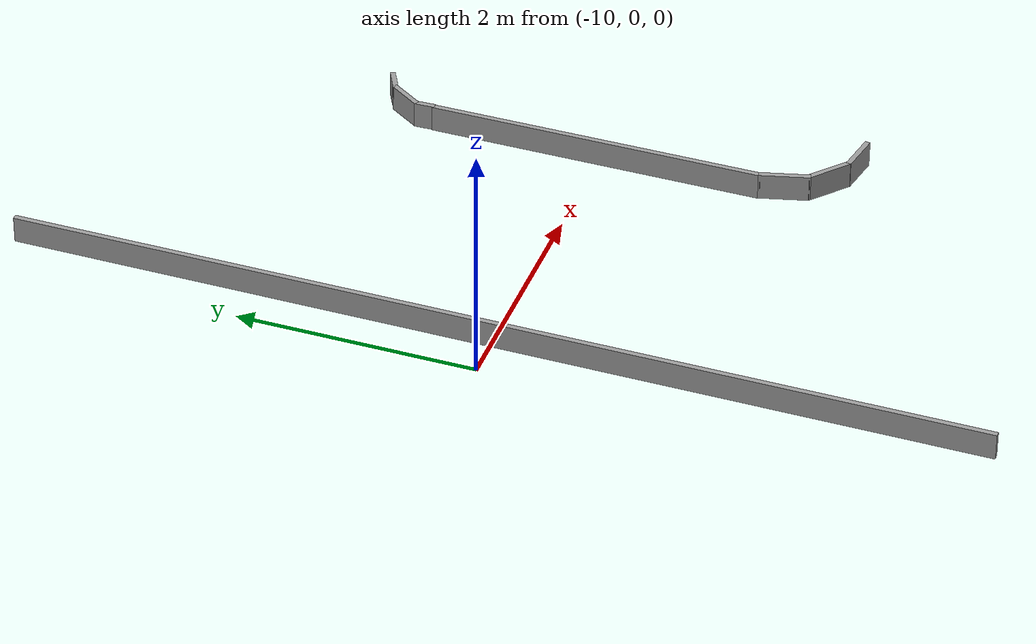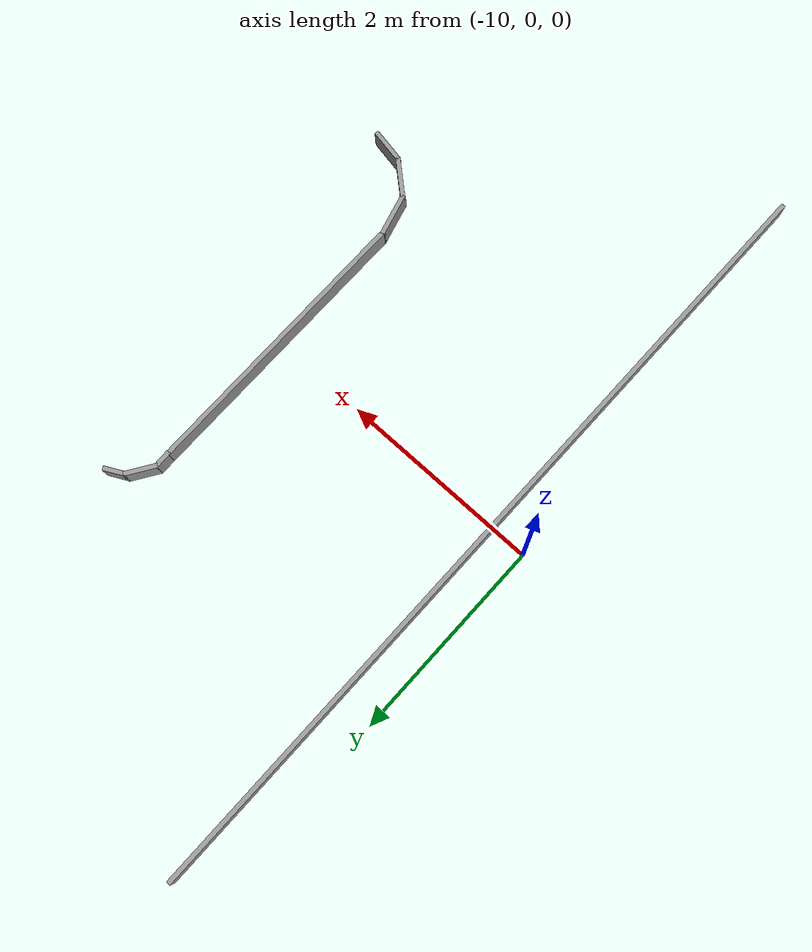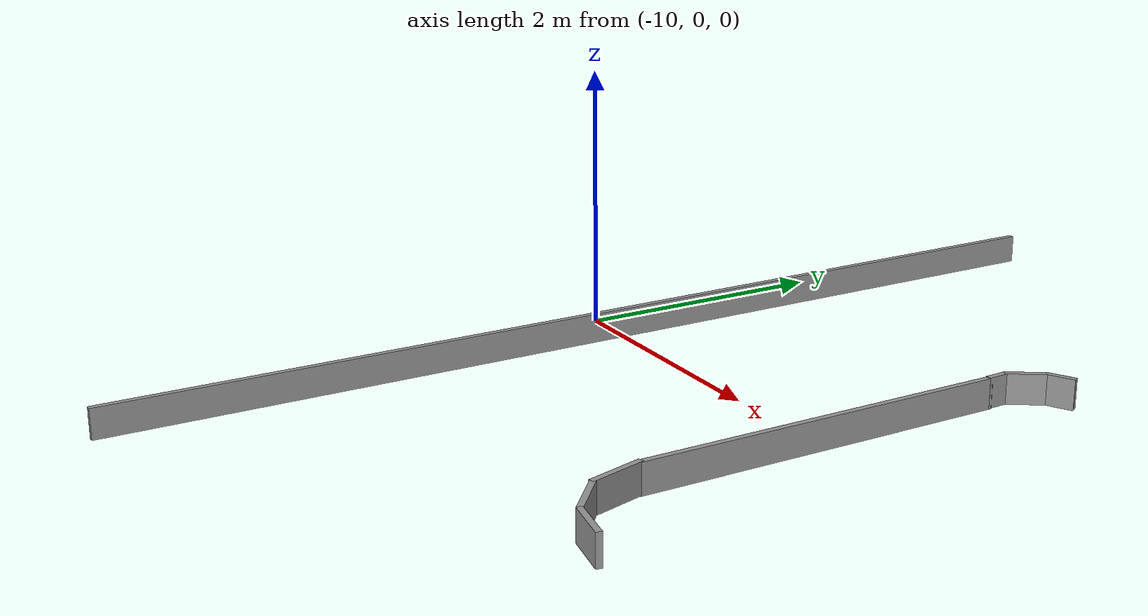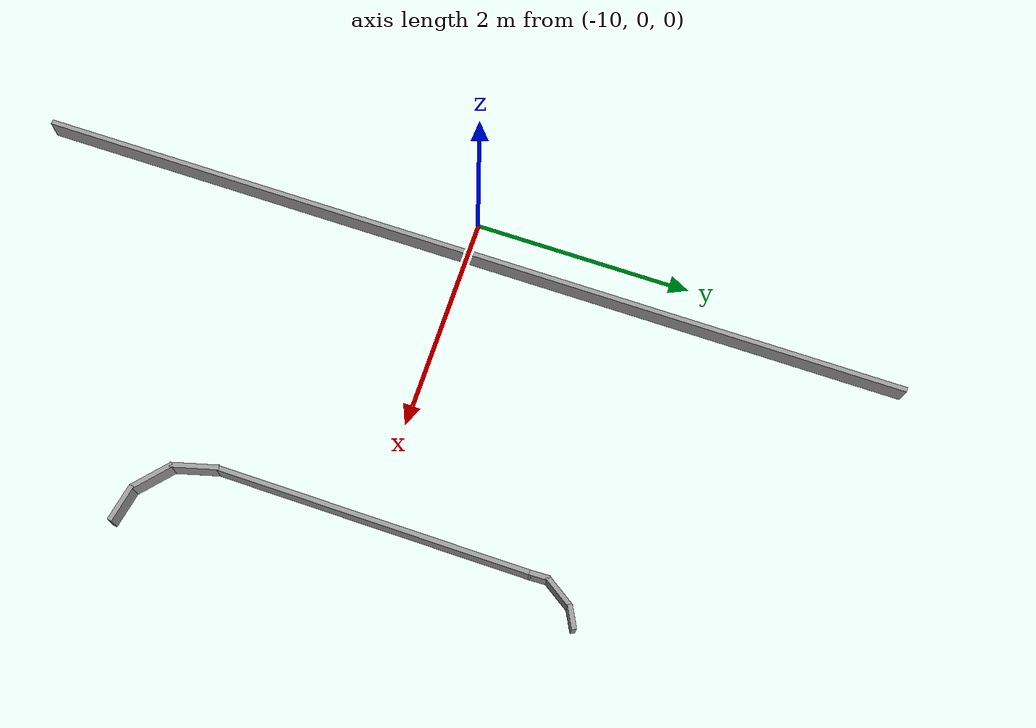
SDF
<sdf version="1.5">
 <world name="default">
  <model name="grey_wall_5">
   <link name="link">
    <pose>-0.467859 -0.097477 1.4 0 -0 0.009516</pose>
    <inertial>
     <inertia><ixx>nan</ixx><ixy>0</ixy><ixz>0</ixz><iyy>nan</iyy><iyz>0</iyz><izz>nan</izz></inertia>
     <mass>0</mass>
    </inertial>
    <visual name="visual">
     <cast_shadows>0</cast_shadows>
     <geometry><box><size>8.07319 0.043266 0.226147</size></box></geometry>
     <material>
      <script>
       <uri>model://grey_wall/materials/scripts</uri>
       <uri>model://grey_wall/materials/textures</uri>
       <name>vrc/grey_wall</name>
      </script>
      <ambient>1 1 1 1</ambient>
      <diffuse>1 1 1 1</diffuse>
      <specular>0 0 0 1</specular>
      <emissive>0 0 0 1</emissive>
     </material>
    </visual>
    <collision name="collision">
     <geometry><box><size>8.07319 0.043266 0.226147</size></box></geometry>
     <surface>
      <friction>
       <ode><mu>1</mu><mu2>1</mu2><fdir1>0 0 0</fdir1><slip1>0</slip1><slip2>0</slip2></ode>
       <torsional>
        <coefficient>1</coefficient>
        <patch_radius>0</patch_radius>
        <surface_radius>0</surface_radius>
        <use_patch_radius>1</use_patch_radius>
        <ode><slip>0</slip></ode>
       </torsional>
      </friction>
      <bounce><restitution_coefficient>0</restitution_coefficient><threshold>1e+06</threshold></bounce>
      <contact>
       <collide_without_contact>0</collide_without_contact>
       <collide_without_contact_bitmask>1</collide_without_contact_bitmask>
       <collide_bitmask>1</collide_bitmask>
       <ode>
        <soft_cfm>0</soft_cfm>
        <soft_erp>0.2</soft_erp>
        <kp>1e+13</kp>
        <kd>1</kd>
        <max_vel>0.01</max_vel>
        <min_depth>0</min_depth>
       </ode>
       <bullet>
        <split_impulse>1</split_impulse>
        <split_impulse_penetration_threshold>-0.01</split_impulse_penetration_threshold>
        <soft_cfm>0</soft_cfm>
        <soft_erp>0.2</soft_erp>
        <kp>1e+13</kp>
        <kd>1</kd>
       </bullet>
      </contact>
     </surface>
    </collision>
   </link>
   <static>1</static>
   <pose>-9.73387 0.474906 -1.30963 0 -0 1.55954</pose>
  </model>
  <model name="grey_wall_41">
   <link name="link">
    <pose>0.112404 0.030945 1.4 0 -0 0.009516</pose>
    <inertial>
     <inertia><ixx>nan</ixx><ixy>0</ixy><ixz>0</ixz><iyy>nan</iyy><iyz>0</iyz><izz>nan</izz></inertia>
     <mass>0</mass>
    </inertial>
    <visual name="visual">
     <cast_shadows>0</cast_shadows>
     <geometry><box><size>2.82247 0.043266 0.226147</size></box></geometry>
     <material>
      <script>
       <uri>model://grey_wall/materials/scripts</uri>
       <uri>model://grey_wall/materials/textures</uri>
       <name>vrc/grey_wall</name>
      </script>
      <ambient>1 1 1 1</ambient>
      <diffuse>1 1 1 1</diffuse>
      <specular>0 0 0 1</specular>
      <emissive>0 0 0 1</emissive>
     </material>
    </visual>
    <collision name="collision">
     <geometry><box><size>2.82247 0.043266 0.226147</size></box></geometry>
     <surface>
      <friction>
       <ode><mu>1</mu><mu2>1</mu2><fdir1>0 0 0</fdir1><slip1>0</slip1><slip2>0</slip2></ode>
       <torsional>
        <coefficient>1</coefficient>
        <patch_radius>0</patch_radius>
        <surface_radius>0</surface_radius>
        <use_patch_radius>1</use_patch_radius>
        <ode><slip>0</slip></ode>
       </torsional>
      </friction>
      <bounce><restitution_coefficient>0</restitution_coefficient><threshold>1e+06</threshold></bounce>
      <contact>
       <collide_without_contact>0</collide_without_contact>
       <collide_without_contact_bitmask>1</collide_without_contact_bitmask>
       <collide_bitmask>1</collide_bitmask>
       <ode>
        <soft_cfm>0</soft_cfm>
        <soft_erp>0.2</soft_erp>
        <kp>1e+13</kp>
        <kd>1</kd>
        <max_vel>0.01</max_vel>
        <min_depth>0</min_depth>
       </ode>
       <bullet>
        <split_impulse>1</split_impulse>
        <split_impulse_penetration_threshold>-0.01</split_impulse_penetration_threshold>
        <soft_cfm>0</soft_cfm>
        <soft_erp>0.2</soft_erp>
        <kp>1e+13</kp>
        <kd>1</kd>
       </bullet>
      </contact>
     </surface>
    </collision>
   </link>
   <static>1</static>
   <pose>-7.0448 -0.073707 -1.30963 0 -0 1.55954</pose>
  </model>
  <model name="grey_wall_42">
   <link name="link">
    <pose>-0.33267 0.448285 1.4 0 0 -1.30708</pose>
    <inertial>
     <inertia><ixx>nan</ixx><ixy>0</ixy><ixz>0</ixz><iyy>nan</iyy><iyz>0</iyz><izz>nan</izz></inertia>
     <mass>0</mass>
    </inertial>
    <visual name="visual">
     <cast_shadows>0</cast_shadows>
     <geometry><box><size>0.42483 0.043266 0.226147</size></box></geometry>
     <material>
      <script>
       <uri>model://grey_wall/materials/scripts</uri>
       <uri>model://grey_wall/materials/textures</uri>
       <name>vrc/grey_wall</name>
      </script>
      <ambient>1 1 1 1</ambient>
      <diffuse>1 1 1 1</diffuse>
      <specular>0 0 0 1</specular>
      <emissive>0 0 0 1</emissive>
     </material>
    </visual>
    <collision name="collision">
     <geometry><box><size>0.42483 0.043266 0.226147</size></box></geometry>
     <surface>
      <friction>
       <ode><mu>1</mu><mu2>1</mu2><fdir1>0 0 0</fdir1><slip1>0</slip1><slip2>0</slip2></ode>
       <torsional>
        <coefficient>1</coefficient>
        <patch_radius>0</patch_radius>
        <surface_radius>0</surface_radius>
        <use_patch_radius>1</use_patch_radius>
        <ode><slip>0</slip></ode>
       </torsional>
      </friction>
      <bounce><restitution_coefficient>0</restitution_coefficient><threshold>1e+06</threshold></bounce>
      <contact>
       <collide_without_contact>0</collide_without_contact>
       <collide_without_contact_bitmask>1</collide_without_contact_bitmask>
       <collide_bitmask>1</collide_bitmask>
       <ode>
        <soft_cfm>0</soft_cfm>
        <soft_erp>0.2</soft_erp>
        <kp>1e+13</kp>
        <kd>1</kd>
        <max_vel>0.01</max_vel>
        <min_depth>0</min_depth>
       </ode>
       <bullet>
        <split_impulse>1</split_impulse>
        <split_impulse_penetration_threshold>-0.01</split_impulse_penetration_threshold>
        <soft_cfm>0</soft_cfm>
        <soft_erp>0.2</soft_erp>
        <kp>1e+13</kp>
        <kd>1</kd>
       </bullet>
      </contact>
     </surface>
    </collision>
   </link>
   <static>1</static>
   <pose>-6.69311 -2.00488 -1.30539 0 -0 0</pose>
  </model>
  <model name="grey_wall_43">
   <link name="link">
    <pose>0.087469 0.011541 1.4 0 0 -0.183893</pose>
    <inertial>
     <inertia><ixx>nan</ixx><ixy>0</ixy><ixz>0</ixz><iyy>nan</iyy><iyz>0</iyz><izz>nan</izz></inertia>
     <mass>0</mass>
    </inertial>
    <visual name="visual">
     <cast_shadows>0</cast_shadows>
     <geometry><box><size>0.343648 0.043266 0.226147</size></box></geometry>
     <material>
      <script>
       <uri>model://grey_wall/materials/scripts</uri>
       <uri>model://grey_wall/materials/textures</uri>
       <name>vrc/grey_wall</name>
      </script>
      <ambient>1 1 1 1</ambient>
      <diffuse>1 1 1 1</diffuse>
      <specular>0 0 0 1</specular>
      <emissive>0 0 0 1</emissive>
     </material>
    </visual>
    <collision name="collision">
     <geometry><box><size>0.343648 0.043266 0.226147</size></box></geometry>
     <surface>
      <friction>
       <ode><mu>1</mu><mu2>1</mu2><fdir1>0 0 0</fdir1><slip1>0</slip1><slip2>0</slip2></ode>
       <torsional>
        <coefficient>1</coefficient>
        <patch_radius>0</patch_radius>
        <surface_radius>0</surface_radius>
        <use_patch_radius>1</use_patch_radius>
        <ode><slip>0</slip></ode>
       </torsional>
      </friction>
      <bounce><restitution_coefficient>0</restitution_coefficient><threshold>1e+06</threshold></bounce>
      <contact>
       <collide_without_contact>0</collide_without_contact>
       <collide_without_contact_bitmask>1</collide_without_contact_bitmask>
       <collide_bitmask>1</collide_bitmask>
       <ode>
        <soft_cfm>0</soft_cfm>
        <soft_erp>0.2</soft_erp>
        <kp>1e+13</kp>
        <kd>1</kd>
        <max_vel>0.01</max_vel>
        <min_depth>0</min_depth>
       </ode>
       <bullet>
        <split_impulse>1</split_impulse>
        <split_impulse_penetration_threshold>-0.01</split_impulse_penetration_threshold>
        <soft_cfm>0</soft_cfm>
        <soft_erp>0.2</soft_erp>
        <kp>1e+13</kp>
        <kd>1</kd>
       </bullet>
      </contact>
     </surface>
    </collision>
   </link>
   <static>1</static>
   <pose>-6.61627 -2.03791 -1.30539 0 -0 0</pose>
  </model>
  <model name="grey_wall_45">
   <link name="link">
    <pose>0.099543 0.095747 1.4 0 0 -0.716202</pose>
    <inertial>
     <inertia><ixx>nan</ixx><ixy>0</ixy><ixz>0</ixz><iyy>nan</iyy><iyz>0</iyz><izz>nan</izz></inertia>
     <mass>0</mass>
    </inertial>
    <visual name="visual">
     <cast_shadows>0</cast_shadows>
     <geometry><box><size>0.396293 0.043266 0.226147</size></box></geometry>
     <material>
      <script>
       <uri>model://grey_wall/materials/scripts</uri>
       <uri>model://grey_wall/materials/textures</uri>
       <name>vrc/grey_wall</name>
      </script>
      <ambient>1 1 1 1</ambient>
      <diffuse>1 1 1 1</diffuse>
      <specular>0 0 0 1</specular>
      <emissive>0 0 0 1</emissive>
     </material>
    </visual>
    <collision name="collision">
     <geometry><box><size>0.396293 0.043266 0.226147</size></box></geometry>
     <surface>
      <friction>
       <ode><mu>1</mu><mu2>1</mu2><fdir1>0 0 0</fdir1><slip1>0</slip1><slip2>0</slip2></ode>
       <torsional>
        <coefficient>1</coefficient>
        <patch_radius>0</patch_radius>
        <surface_radius>0</surface_radius>
        <use_patch_radius>1</use_patch_radius>
        <ode><slip>0</slip></ode>
       </torsional>
      </friction>
      <bounce><restitution_coefficient>0</restitution_coefficient><threshold>1e+06</threshold></bounce>
      <contact>
       <collide_without_contact>0</collide_without_contact>
       <collide_without_contact_bitmask>1</collide_without_contact_bitmask>
       <collide_bitmask>1</collide_bitmask>
       <ode>
        <soft_cfm>0</soft_cfm>
        <soft_erp>0.2</soft_erp>
        <kp>1e+13</kp>
        <kd>1</kd>
        <max_vel>0.01</max_vel>
        <min_depth>0</min_depth>
       </ode>
       <bullet>
        <split_impulse>1</split_impulse>
        <split_impulse_penetration_threshold>-0.01</split_impulse_penetration_threshold>
        <soft_cfm>0</soft_cfm>
        <soft_erp>0.2</soft_erp>
        <kp>1e+13</kp>
        <kd>1</kd>
       </bullet>
      </contact>
     </surface>
    </collision>
   </link>
   <static>1</static>
   <pose>-6.93206 -1.9655 -1.30539 0 -0 0</pose>
  </model>
  <model name="grey_wall_46">
   <link name="link">
    <pose>-0.251242 0.347316 1.4 0 0 -2.15621</pose>
    <inertial>
     <inertia><ixx>nan</ixx><ixy>0</ixy><ixz>0</ixz><iyy>nan</iyy><iyz>0</iyz><izz>nan</izz></inertia>
     <mass>0</mass>
    </inertial>
    <visual name="visual">
     <cast_shadows>0</cast_shadows>
     <geometry><box><size>0.310921 0.043266 0.226147</size></box></geometry>
     <material>
      <script>
       <uri>model://grey_wall/materials/scripts</uri>
       <uri>model://grey_wall/materials/textures</uri>
       <name>vrc/grey_wall</name>
      </script>
      <ambient>1 1 1 1</ambient>
      <diffuse>1 1 1 1</diffuse>
      <specular>0 0 0 1</specular>
      <emissive>0 0 0 1</emissive>
     </material>
    </visual>
    <collision name="collision">
     <geometry><box><size>0.310921 0.043266 0.226147</size></box></geometry>
     <surface>
      <friction>
       <ode><mu>1</mu><mu2>1</mu2><fdir1>0 0 0</fdir1><slip1>0</slip1><slip2>0</slip2></ode>
       <torsional>
        <coefficient>1</coefficient>
        <patch_radius>0</patch_radius>
        <surface_radius>0</surface_radius>
        <use_patch_radius>1</use_patch_radius>
        <ode><slip>0</slip></ode>
       </torsional>
      </friction>
      <bounce><restitution_coefficient>0</restitution_coefficient><threshold>1e+06</threshold></bounce>
      <contact>
       <collide_without_contact>0</collide_without_contact>
       <collide_without_contact_bitmask>1</collide_without_contact_bitmask>
       <collide_bitmask>1</collide_bitmask>
       <ode>
        <soft_cfm>0</soft_cfm>
        <soft_erp>0.2</soft_erp>
        <kp>1e+13</kp>
        <kd>1</kd>
        <max_vel>0.01</max_vel>
        <min_depth>0</min_depth>
       </ode>
       <bullet>
        <split_impulse>1</split_impulse>
        <split_impulse_penetration_threshold>-0.01</split_impulse_penetration_threshold>
        <soft_cfm>0</soft_cfm>
        <soft_erp>0.2</soft_erp>
        <kp>1e+13</kp>
        <kd>1</kd>
       </bullet>
      </contact>
     </surface>
    </collision>
   </link>
   <static>1</static>
   <pose>-6.74421 1.36457 -1.30539 0 -0 0</pose>
  </model>
  <model name="grey_wall_47">
   <link name="link">
    <pose>-0.296006 0.364249 1.4 0 0 -2.66206</pose>
    <inertial>
     <inertia><ixx>nan</ixx><ixy>0</ixy><ixz>0</ixz><iyy>nan</iyy><iyz>0</iyz><izz>nan</izz></inertia>
     <mass>0</mass>
    </inertial>
    <visual name="visual">
     <cast_shadows>0</cast_shadows>
     <geometry><box><size>0.210264 0.043266 0.226147</size></box></geometry>
     <material>
      <script>
       <uri>model://grey_wall/materials/scripts</uri>
       <uri>model://grey_wall/materials/textures</uri>
       <name>vrc/grey_wall</name>
      </script>
      <ambient>1 1 1 1</ambient>
      <diffuse>1 1 1 1</diffuse>
      <specular>0 0 0 1</specular>
      <emissive>0 0 0 1</emissive>
     </material>
    </visual>
    <collision name="collision">
     <geometry><box><size>0.210264 0.043266 0.226147</size></box></geometry>
     <surface>
      <friction>
       <ode><mu>1</mu><mu2>1</mu2><fdir1>0 0 0</fdir1><slip1>0</slip1><slip2>0</slip2></ode>
       <torsional>
        <coefficient>1</coefficient>
        <patch_radius>0</patch_radius>
        <surface_radius>0</surface_radius>
        <use_patch_radius>1</use_patch_radius>
        <ode><slip>0</slip></ode>
       </torsional>
      </friction>
      <bounce><restitution_coefficient>0</restitution_coefficient><threshold>1e+06</threshold></bounce>
      <contact>
       <collide_without_contact>0</collide_without_contact>
       <collide_without_contact_bitmask>1</collide_without_contact_bitmask>
       <collide_bitmask>1</collide_bitmask>
       <ode>
        <soft_cfm>0</soft_cfm>
        <soft_erp>0.2</soft_erp>
        <kp>1e+13</kp>
        <kd>1</kd>
        <max_vel>0.01</max_vel>
        <min_depth>0</min_depth>
       </ode>
       <bullet>
        <split_impulse>1</split_impulse>
        <split_impulse_penetration_threshold>-0.01</split_impulse_penetration_threshold>
        <soft_cfm>0</soft_cfm>
        <soft_erp>0.2</soft_erp>
        <kp>1e+13</kp>
        <kd>1</kd>
       </bullet>
      </contact>
     </surface>
    </collision>
   </link>
   <static>1</static>
   <pose>-6.53614 1.50936 -1.30539 0 -0 0</pose>
  </model>
  <model name="grey_wall_48">
   <link name="link">
    <pose>-0.248454 0.370241 1.4 0 0 -1.53931</pose>
    <inertial>
     <inertia><ixx>nan</ixx><ixy>0</ixy><ixz>0</ixz><iyy>nan</iyy><iyz>0</iyz><izz>nan</izz></inertia>
     <mass>0</mass>
    </inertial>
    <visual name="visual">
     <cast_shadows>0</cast_shadows>
     <geometry><box><size>0.173256 0.043266 0.226147</size></box></geometry>
     <material>
      <script>
       <uri>model://grey_wall/materials/scripts</uri>
       <uri>model://grey_wall/materials/textures</uri>
       <name>vrc/grey_wall</name>
      </script>
      <ambient>1 1 1 1</ambient>
      <diffuse>1 1 1 1</diffuse>
      <specular>0 0 0 1</specular>
      <emissive>0 0 0 1</emissive>
     </material>
    </visual>
    <collision name="collision">
     <geometry><box><size>0.173256 0.043266 0.226147</size></box></geometry>
     <surface>
      <friction>
       <ode><mu>1</mu><mu2>1</mu2><fdir1>0 0 0</fdir1><slip1>0</slip1><slip2>0</slip2></ode>
       <torsional>
        <coefficient>1</coefficient>
        <patch_radius>0</patch_radius>
        <surface_radius>0</surface_radius>
        <use_patch_radius>1</use_patch_radius>
        <ode><slip>0</slip></ode>
       </torsional>
      </friction>
      <bounce><restitution_coefficient>0</restitution_coefficient><threshold>1e+06</threshold></bounce>
      <contact>
       <collide_without_contact>0</collide_without_contact>
       <collide_without_contact_bitmask>1</collide_without_contact_bitmask>
       <collide_bitmask>1</collide_bitmask>
       <ode>
        <soft_cfm>0</soft_cfm>
        <soft_erp>0.2</soft_erp>
        <kp>1e+13</kp>
        <kd>1</kd>
        <max_vel>0.01</max_vel>
        <min_depth>0</min_depth>
       </ode>
       <bullet>
        <split_impulse>1</split_impulse>
        <split_impulse_penetration_threshold>-0.01</split_impulse_penetration_threshold>
        <soft_cfm>0</soft_cfm>
        <soft_erp>0.2</soft_erp>
        <kp>1e+13</kp>
        <kd>1</kd>
       </bullet>
      </contact>
     </surface>
    </collision>
   </link>
   <static>1</static>
   <pose>-6.82569 1.14451 -1.30539 0 -0 0</pose>
  </model>
 </world>
</sdf>
